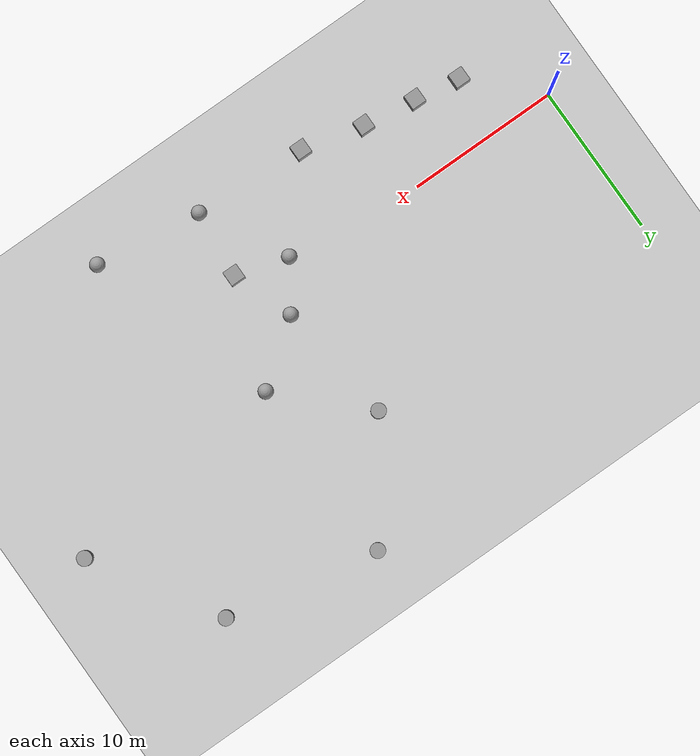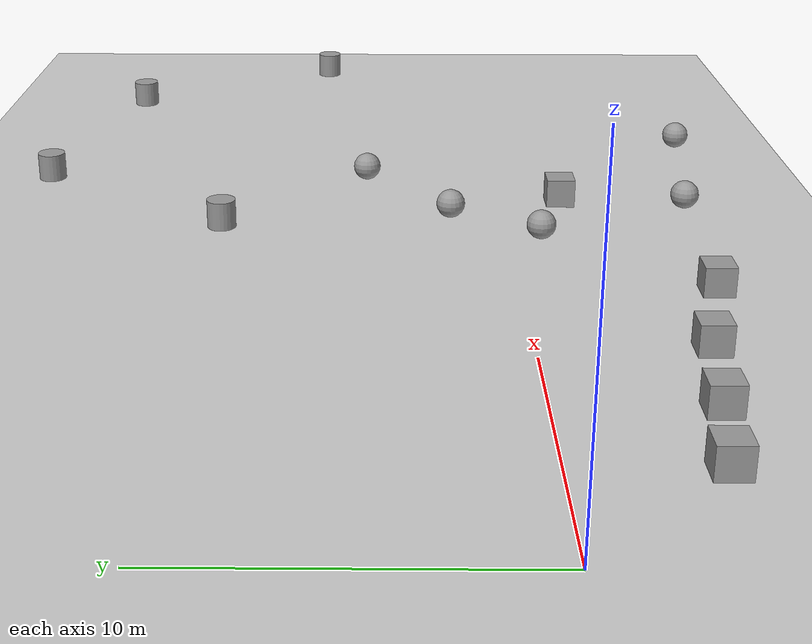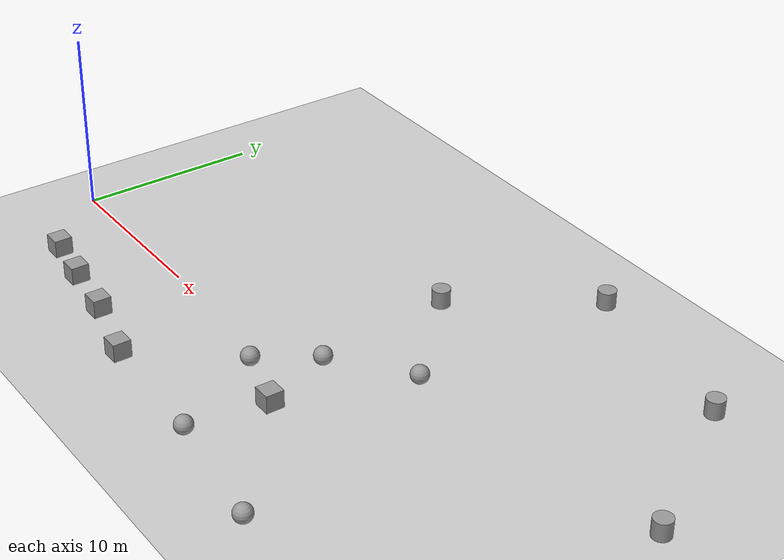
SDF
<sdf version="1.4">
 <world name="default">
  <model name="ground_plane">
   <static>1</static>
   <link name="link">
    <collision name="collision">
     <geometry><plane><normal>0 0 1</normal><size>100 100</size></plane></geometry>
     <surface><friction><ode><mu>100</mu><mu2>50</mu2></ode></friction></surface>
    </collision>
    <visual name="visual">
     <cast_shadows>0</cast_shadows>
     <geometry><plane><normal>0 0 1</normal><size>100 100</size></plane></geometry>
     <material>
      <script><uri>file://media/materials/scripts/gazebo.material</uri><name>Gazebo/Grey</name></script>
     </material>
    </visual>
    <velocity_decay><linear>0</linear><angular>0</angular></velocity_decay>
   </link>
  </model>
  <light name="sun" type="directional">
   <pose>0 0 10 0 -0 0</pose>
   <diffuse>0.8 0.8 0.8 1</diffuse>
   <specular>0.2 0.2 0.2 1</specular>
   <attenuation>
    <range>1000</range>
    <constant>0.9</constant>
    <linear>0.01</linear>
    <quadratic>0.001</quadratic>
   </attenuation>
   <direction>-0.5 0.1 -0.9</direction>
  </light>
  <physics type="ode">
   <gravity>0 0 -9.81</gravity>
   <max_step_size>0.01</max_step_size>
   <real_time_factor>1</real_time_factor>
   <real_time_update_rate>100</real_time_update_rate>
   <ode>
    <solver><type>quick</type><iters>5000</iters><sor>1.3</sor></solver>
    <constraints>
     <cfm>0</cfm>
     <erp>0.1</erp>
     <contact_max_correcting_vel>100</contact_max_correcting_vel>
     <contact_surface_layer>0.001</contact_surface_layer>
    </constraints>
   </ode>
  </physics>
  <scene><ambient>0.4 0.4 0.4 1</ambient><background>0.7 0.7 0.7 1</background><shadows>1</shadows></scene>
  <spherical_coordinates>
   <surface_model>EARTH_WGS84</surface_model>
   <latitude_deg>0</latitude_deg>
   <longitude_deg>0</longitude_deg>
   <elevation>0</elevation>
   <heading_deg>0</heading_deg>
  </spherical_coordinates>
  <model name="unit_box_1_0">
   <pose>4 -4 0.5 0 -0 0</pose>
   <link name="link">
    <inertial>
     <mass>1</mass>
     <inertia><ixx>1</ixx><ixy>0</ixy><ixz>0</ixz><iyy>1</iyy><iyz>0</iyz><izz>1</izz></inertia>
    </inertial>
    <collision name="collision"><geometry><box><size>1 1 1</size></box></geometry></collision>
    <visual name="visual">
     <geometry><box><size>1 1 1</size></box></geometry>
     <material>
      <script><uri>file://media/materials/scripts/gazebo.material</uri><name>Gazebo/Grey</name></script>
     </material>
    </visual>
    <velocity_decay><linear>0</linear><angular>0</angular></velocity_decay>
   </link>
   <static>0</static>
  </model>
  <model name="unit_box_2_0">
   <pose>7 -4.49451 0.5 0 -0 0</pose>
   <link name="link">
    <inertial>
     <mass>1</mass>
     <inertia><ixx>1</ixx><ixy>0</ixy><ixz>0</ixz><iyy>1</iyy><iyz>0</iyz><izz>1</izz></inertia>
    </inertial>
    <collision name="collision"><geometry><box><size>1 1 1</size></box></geometry></collision>
    <visual name="visual">
     <geometry><box><size>1 1 1</size></box></geometry>
     <material>
      <script><uri>file://media/materials/scripts/gazebo.material</uri><name>Gazebo/Grey</name></script>
     </material>
    </visual>
    <velocity_decay><linear>0</linear><angular>0</angular></velocity_decay>
   </link>
   <static>0</static>
  </model>
  <model name="unit_box_3_0">
   <pose>10.5254 -5 0.5 0 -0 0</pose>
   <link name="link">
    <inertial>
     <mass>1</mass>
     <inertia><ixx>1</ixx><ixy>0</ixy><ixz>0</ixz><iyy>1</iyy><iyz>0</iyz><izz>1</izz></inertia>
    </inertial>
    <collision name="collision"><geometry><box><size>1 1 1</size></box></geometry></collision>
    <visual name="visual">
     <geometry><box><size>1 1 1</size></box></geometry>
     <material>
      <script><uri>file://media/materials/scripts/gazebo.material</uri><name>Gazebo/Grey</name></script>
     </material>
    </visual>
    <velocity_decay><linear>0</linear><angular>0</angular></velocity_decay>
   </link>
   <static>0</static>
  </model>
  <model name="unit_box_4_0">
   <pose>14.5934 -6 0.5 0 -0 0</pose>
   <link name="link">
    <inertial>
     <mass>1</mass>
     <inertia><ixx>1</ixx><ixy>0</ixy><ixz>0</ixz><iyy>1</iyy><iyz>0</iyz><izz>1</izz></inertia>
    </inertial>
    <collision name="collision"><geometry><box><size>1 1 1</size></box></geometry></collision>
    <visual name="visual">
     <geometry><box><size>1 1 1</size></box></geometry>
     <material>
      <script><uri>file://media/materials/scripts/gazebo.material</uri><name>Gazebo/Grey</name></script>
     </material>
    </visual>
    <velocity_decay><linear>0</linear><angular>0</angular></velocity_decay>
   </link>
   <static>0</static>
  </model>
  <model name="unit_box_7_0">
   <pose>22.4584 -2 0.5 0 -0 0</pose>
   <link name="link">
    <inertial>
     <mass>1</mass>
     <inertia><ixx>1</ixx><ixy>0</ixy><ixz>0</ixz><iyy>1</iyy><iyz>0</iyz><izz>1</izz></inertia>
    </inertial>
    <collision name="collision"><geometry><box><size>1 1 1</size></box></geometry></collision>
    <visual name="visual">
     <geometry><box><size>1 1 1</size></box></geometry>
     <material>
      <script><uri>file://media/materials/scripts/gazebo.material</uri><name>Gazebo/Grey</name></script>
     </material>
    </visual>
    <velocity_decay><linear>0</linear><angular>0</angular></velocity_decay>
   </link>
   <static>0</static>
  </model>
  <model name="unit_sphere_1">
   <pose>21 2 0.5 0 -0 0</pose>
   <link name="link">
    <inertial>
     <mass>1</mass>
     <inertia><ixx>1</ixx><ixy>0</ixy><ixz>0</ixz><iyy>1</iyy><iyz>0</iyz><izz>1</izz></inertia>
    </inertial>
    <collision name="collision"><geometry><sphere><radius>0.5</radius></sphere></geometry></collision>
    <visual name="visual">
     <geometry><sphere><radius>0.5</radius></sphere></geometry>
     <material>
      <script><uri>file://media/materials/scripts/gazebo.material</uri><name>Gazebo/Grey</name></script>
     </material>
    </visual>
    <velocity_decay><linear>0</linear><angular>0</angular></velocity_decay>
   </link>
   <static>0</static>
  </model>
  <model name="unit_sphere_2_0">
   <pose>25 5 0.5 0 -0 0</pose>
   <link name="link">
    <inertial>
     <mass>1</mass>
     <inertia><ixx>1</ixx><ixy>0</ixy><ixz>0</ixz><iyy>1</iyy><iyz>0</iyz><izz>1</izz></inertia>
    </inertial>
    <collision name="collision"><geometry><sphere><radius>0.5</radius></sphere></geometry></collision>
    <visual name="visual">
     <geometry><sphere><radius>0.5</radius></sphere></geometry>
     <material>
      <script><uri>file://media/materials/scripts/gazebo.material</uri><name>Gazebo/Grey</name></script>
     </material>
    </visual>
    <velocity_decay><linear>0</linear><angular>0</angular></velocity_decay>
   </link>
   <static>0</static>
  </model>
  <model name="unit_sphere_4">
   <pose>19 -1 0.5 0 -0 0</pose>
   <link name="link">
    <inertial>
     <mass>1</mass>
     <inertia><ixx>1</ixx><ixy>0</ixy><ixz>0</ixz><iyy>1</iyy><iyz>0</iyz><izz>1</izz></inertia>
    </inertial>
    <collision name="collision"><geometry><sphere><radius>0.5</radius></sphere></geometry></collision>
    <visual name="visual">
     <geometry><sphere><radius>0.5</radius></sphere></geometry>
     <material>
      <script><uri>file://media/materials/scripts/gazebo.material</uri><name>Gazebo/Grey</name></script>
     </material>
    </visual>
    <velocity_decay><linear>0</linear><angular>0</angular></velocity_decay>
   </link>
   <static>0</static>
  </model>
  <model name="unit_cylinder_17">
   <pose>20 10 0.499119 -0 -0 -0</pose>
   <link name="link">
    <inertial>
     <mass>1</mass>
     <inertia><ixx>1</ixx><ixy>0</ixy><ixz>0</ixz><iyy>1</iyy><iyz>0</iyz><izz>1</izz></inertia>
    </inertial>
    <collision name="collision">
     <geometry><cylinder><radius>0.5</radius><length>1</length></cylinder></geometry>
    </collision>
    <visual name="visual">
     <geometry><cylinder><radius>0.5</radius><length>1</length></cylinder></geometry>
     <material>
      <script><uri>file://media/materials/scripts/gazebo.material</uri><name>Gazebo/Grey</name></script>
     </material>
    </visual>
    <velocity_decay><linear>0</linear><angular>0</angular></velocity_decay>
   </link>
   <static>0</static>
  </model>
  <model name="unit_cylinder_18">
   <pose>25 17 0.499119 -0 -0 -0</pose>
   <link name="link">
    <inertial>
     <mass>1</mass>
     <inertia><ixx>1</ixx><ixy>0</ixy><ixz>0</ixz><iyy>1</iyy><iyz>0</iyz><izz>1</izz></inertia>
    </inertial>
    <collision name="collision">
     <geometry><cylinder><radius>0.5</radius><length>1</length></cylinder></geometry>
    </collision>
    <visual name="visual">
     <geometry><cylinder><radius>0.5</radius><length>1</length></cylinder></geometry>
     <material>
      <script><uri>file://media/materials/scripts/gazebo.material</uri><name>Gazebo/Grey</name></script>
     </material>
    </visual>
    <velocity_decay><linear>0</linear><angular>0</angular></velocity_decay>
   </link>
   <static>0</static>
  </model>
  <model name="unit_cylinder_19">
   <pose>35 15 0.499119 -0 -0 -0</pose>
   <link name="link">
    <inertial>
     <mass>1</mass>
     <inertia><ixx>1</ixx><ixy>0</ixy><ixz>0</ixz><iyy>1</iyy><iyz>0</iyz><izz>1</izz></inertia>
    </inertial>
    <collision name="collision">
     <geometry><cylinder><radius>0.5</radius><length>1</length></cylinder></geometry>
    </collision>
    <visual name="visual">
     <geometry><cylinder><radius>0.5</radius><length>1</length></cylinder></geometry>
     <material>
      <script><uri>file://media/materials/scripts/gazebo.material</uri><name>Gazebo/Grey</name></script>
     </material>
    </visual>
    <velocity_decay><linear>0</linear><angular>0</angular></velocity_decay>
   </link>
   <static>0</static>
  </model>
  <model name="unit_cylinder_20">
   <pose>40 7 0.499119 -0 -0 -0</pose>
   <link name="link">
    <inertial>
     <mass>1</mass>
     <inertia><ixx>1</ixx><ixy>0</ixy><ixz>0</ixz><iyy>1</iyy><iyz>0</iyz><izz>1</izz></inertia>
    </inertial>
    <collision name="collision">
     <geometry><cylinder><radius>0.5</radius><length>1</length></cylinder></geometry>
    </collision>
    <visual name="visual">
     <geometry><cylinder><radius>0.5</radius><length>1</length></cylinder></geometry>
     <material>
      <script><uri>file://media/materials/scripts/gazebo.material</uri><name>Gazebo/Grey</name></script>
     </material>
    </visual>
    <velocity_decay><linear>0</linear><angular>0</angular></velocity_decay>
   </link>
   <static>0</static>
  </model>
  <model name="unit_sphere_5">
   <pose>22 -6.44564 0.5 0 -0 0</pose>
   <link name="link">
    <inertial>
     <mass>1</mass>
     <inertia><ixx>1</ixx><ixy>0</ixy><ixz>0</ixz><iyy>1</iyy><iyz>0</iyz><izz>1</izz></inertia>
    </inertial>
    <collision name="collision"><geometry><sphere><radius>0.5</radius></sphere></geometry></collision>
    <visual name="visual">
     <geometry><sphere><radius>0.5</radius></sphere></geometry>
     <material>
      <script><uri>file://media/materials/scripts/gazebo.material</uri><name>Gazebo/Grey</name></script>
     </material>
    </visual>
    <velocity_decay><linear>0</linear><angular>0</angular></velocity_decay>
   </link>
   <static>0</static>
  </model>
  <model name="unit_sphere_6">
   <pose>29 -7.43704 0.5 0 -0 0</pose>
   <link name="link">
    <inertial>
     <mass>1</mass>
     <inertia><ixx>1</ixx><ixy>0</ixy><ixz>0</ixz><iyy>1</iyy><iyz>0</iyz><izz>1</izz></inertia>
    </inertial>
    <collision name="collision"><geometry><sphere><radius>0.5</radius></sphere></geometry></collision>
    <visual name="visual">
     <geometry><sphere><radius>0.5</radius></sphere></geometry>
     <material>
      <script><uri>file://media/materials/scripts/gazebo.material</uri><name>Gazebo/Grey</name></script>
     </material>
    </visual>
    <velocity_decay><linear>0</linear><angular>0</angular></velocity_decay>
   </link>
   <static>0</static>
  </model>
 </world>
</sdf>
